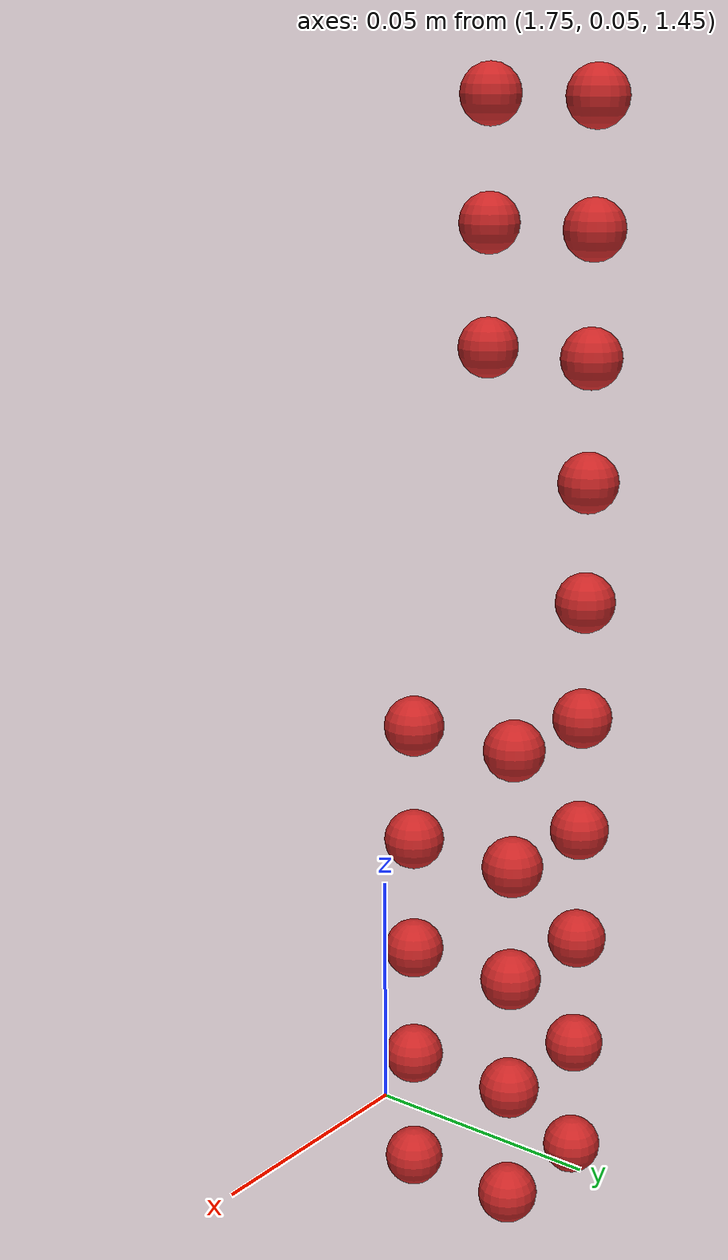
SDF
<sdf version="1.4">
 <world name="default">
  <model name="ground_plane">
   <static>1</static>
   <link name="link">
    <collision name="collision">
     <geometry><plane><normal>0 0 1</normal><size>100 100</size></plane></geometry>
     <surface><friction><ode><mu>100</mu><mu2>50</mu2></ode></friction></surface>
    </collision>
    <visual name="visual">
     <cast_shadows>0</cast_shadows>
     <geometry><plane><normal>0 0 1</normal><size>100 100</size></plane></geometry>
     <material>
      <script><uri>file://media/materials/scripts/gazebo.material</uri><name>Gazebo/Grey</name></script>
     </material>
    </visual>
    <velocity_decay><linear>0</linear><angular>0</angular></velocity_decay>
   </link>
  </model>
  <model name="sphere4">
   <pose>0.879343 0.032112 0.722288 0 0 0</pose>
   <link name="link">
    <pose>0.879343 0.032112 0.722288 0 0 0</pose>
    <inertial>
     <mass>0.001</mass>
     <inertia>
      <ixx>0.004</ixx>
      <ixy>0.000000</ixy>
      <ixz>0.000000</ixz>
      <iyy>0.004</iyy>
      <iyz>0.000000</iyz>
      <izz>0.004</izz>
     </inertia>
    </inertial>
    <collision name="collision">
     <surface>
      <contact><ode><kp>10000000000.000000</kp><kd>1</kd></ode></contact>
      <friction><ode><mu>0.01</mu><mu2>0.01</mu2></ode></friction>
     </surface>
     <geometry><sphere><radius>0.006</radius></sphere></geometry>
    </collision>
    <visual name="visual">
     <geometry><sphere><radius>0.006</radius></sphere></geometry>
     <material>
      <script><uri>file://media/materials/scripts/gazebo.material</uri><name>Gazebo/Red</name></script>
     </material>
    </visual>
   </link>
  </model>
  <model name="sphere6">
   <pose>0.867343 0.044112 0.722288 0 0 0</pose>
   <link name="link">
    <pose>0.867343 0.044112 0.722288 0 0 0</pose>
    <inertial>
     <mass>0.001</mass>
     <inertia>
      <ixx>0.004</ixx>
      <ixy>0.000000</ixy>
      <ixz>0.000000</ixz>
      <iyy>0.004</iyy>
      <iyz>0.000000</iyz>
      <izz>0.004</izz>
     </inertia>
    </inertial>
    <collision name="collision">
     <surface>
      <contact><ode><kp>10000000000.000000</kp><kd>1</kd></ode></contact>
      <friction><ode><mu>0.01</mu><mu2>0.01</mu2></ode></friction>
     </surface>
     <geometry><sphere><radius>0.006</radius></sphere></geometry>
    </collision>
    <visual name="visual">
     <geometry><sphere><radius>0.006</radius></sphere></geometry>
     <material>
      <script><uri>file://media/materials/scripts/gazebo.material</uri><name>Gazebo/Red</name></script>
     </material>
    </visual>
   </link>
  </model>
  <model name="sphere7">
   <pose>0.879343 0.044112 0.722288 0 0 0</pose>
   <link name="link">
    <pose>0.879343 0.044112 0.722288 0 0 0</pose>
    <inertial>
     <mass>0.001</mass>
     <inertia>
      <ixx>0.004</ixx>
      <ixy>0.000000</ixy>
      <ixz>0.000000</ixz>
      <iyy>0.004</iyy>
      <iyz>0.000000</iyz>
      <izz>0.004</izz>
     </inertia>
    </inertial>
    <collision name="collision">
     <surface>
      <contact><ode><kp>10000000000.000000</kp><kd>1</kd></ode></contact>
      <friction><ode><mu>0.01</mu><mu2>0.01</mu2></ode></friction>
     </surface>
     <geometry><sphere><radius>0.006</radius></sphere></geometry>
    </collision>
    <visual name="visual">
     <geometry><sphere><radius>0.006</radius></sphere></geometry>
     <material>
      <script><uri>file://media/materials/scripts/gazebo.material</uri><name>Gazebo/Red</name></script>
     </material>
    </visual>
   </link>
  </model>
  <model name="sphere13">
   <pose>0.879343 0.032112 0.734288 0 0 0</pose>
   <link name="link">
    <pose>0.879343 0.032112 0.734288 0 0 0</pose>
    <inertial>
     <mass>0.001</mass>
     <inertia>
      <ixx>0.004</ixx>
      <ixy>0.000000</ixy>
      <ixz>0.000000</ixz>
      <iyy>0.004</iyy>
      <iyz>0.000000</iyz>
      <izz>0.004</izz>
     </inertia>
    </inertial>
    <collision name="collision">
     <surface>
      <contact><ode><kp>10000000000.000000</kp><kd>1</kd></ode></contact>
      <friction><ode><mu>0.01</mu><mu2>0.01</mu2></ode></friction>
     </surface>
     <geometry><sphere><radius>0.006</radius></sphere></geometry>
    </collision>
    <visual name="visual">
     <geometry><sphere><radius>0.006</radius></sphere></geometry>
     <material>
      <script><uri>file://media/materials/scripts/gazebo.material</uri><name>Gazebo/Red</name></script>
     </material>
    </visual>
   </link>
  </model>
  <model name="sphere15">
   <pose>0.867343 0.044112 0.734288 0 0 0</pose>
   <link name="link">
    <pose>0.867343 0.044112 0.734288 0 0 0</pose>
    <inertial>
     <mass>0.001</mass>
     <inertia>
      <ixx>0.004</ixx>
      <ixy>0.000000</ixy>
      <ixz>0.000000</ixz>
      <iyy>0.004</iyy>
      <iyz>0.000000</iyz>
      <izz>0.004</izz>
     </inertia>
    </inertial>
    <collision name="collision">
     <surface>
      <contact><ode><kp>10000000000.000000</kp><kd>1</kd></ode></contact>
      <friction><ode><mu>0.01</mu><mu2>0.01</mu2></ode></friction>
     </surface>
     <geometry><sphere><radius>0.006</radius></sphere></geometry>
    </collision>
    <visual name="visual">
     <geometry><sphere><radius>0.006</radius></sphere></geometry>
     <material>
      <script><uri>file://media/materials/scripts/gazebo.material</uri><name>Gazebo/Red</name></script>
     </material>
    </visual>
   </link>
  </model>
  <model name="sphere16">
   <pose>0.879343 0.044112 0.734288 0 0 0</pose>
   <link name="link">
    <pose>0.879343 0.044112 0.734288 0 0 0</pose>
    <inertial>
     <mass>0.001</mass>
     <inertia>
      <ixx>0.004</ixx>
      <ixy>0.000000</ixy>
      <ixz>0.000000</ixz>
      <iyy>0.004</iyy>
      <iyz>0.000000</iyz>
      <izz>0.004</izz>
     </inertia>
    </inertial>
    <collision name="collision">
     <surface>
      <contact><ode><kp>10000000000.000000</kp><kd>1</kd></ode></contact>
      <friction><ode><mu>0.01</mu><mu2>0.01</mu2></ode></friction>
     </surface>
     <geometry><sphere><radius>0.006</radius></sphere></geometry>
    </collision>
    <visual name="visual">
     <geometry><sphere><radius>0.006</radius></sphere></geometry>
     <material>
      <script><uri>file://media/materials/scripts/gazebo.material</uri><name>Gazebo/Red</name></script>
     </material>
    </visual>
   </link>
  </model>
  <model name="sphere22">
   <pose>0.879343 0.032112 0.746288 0 0 0</pose>
   <link name="link">
    <pose>0.879343 0.032112 0.746288 0 0 0</pose>
    <inertial>
     <mass>0.001</mass>
     <inertia>
      <ixx>0.004</ixx>
      <ixy>0.000000</ixy>
      <ixz>0.000000</ixz>
      <iyy>0.004</iyy>
      <iyz>0.000000</iyz>
      <izz>0.004</izz>
     </inertia>
    </inertial>
    <collision name="collision">
     <surface>
      <contact><ode><kp>10000000000.000000</kp><kd>1</kd></ode></contact>
      <friction><ode><mu>0.01</mu><mu2>0.01</mu2></ode></friction>
     </surface>
     <geometry><sphere><radius>0.006</radius></sphere></geometry>
    </collision>
    <visual name="visual">
     <geometry><sphere><radius>0.006</radius></sphere></geometry>
     <material>
      <script><uri>file://media/materials/scripts/gazebo.material</uri><name>Gazebo/Red</name></script>
     </material>
    </visual>
   </link>
  </model>
  <model name="sphere24">
   <pose>0.867343 0.044112 0.746288 0 0 0</pose>
   <link name="link">
    <pose>0.867343 0.044112 0.746288 0 0 0</pose>
    <inertial>
     <mass>0.001</mass>
     <inertia>
      <ixx>0.004</ixx>
      <ixy>0.000000</ixy>
      <ixz>0.000000</ixz>
      <iyy>0.004</iyy>
      <iyz>0.000000</iyz>
      <izz>0.004</izz>
     </inertia>
    </inertial>
    <collision name="collision">
     <surface>
      <contact><ode><kp>10000000000.000000</kp><kd>1</kd></ode></contact>
      <friction><ode><mu>0.01</mu><mu2>0.01</mu2></ode></friction>
     </surface>
     <geometry><sphere><radius>0.006</radius></sphere></geometry>
    </collision>
    <visual name="visual">
     <geometry><sphere><radius>0.006</radius></sphere></geometry>
     <material>
      <script><uri>file://media/materials/scripts/gazebo.material</uri><name>Gazebo/Red</name></script>
     </material>
    </visual>
   </link>
  </model>
  <model name="sphere25">
   <pose>0.879343 0.044112 0.746288 0 0 0</pose>
   <link name="link">
    <pose>0.879343 0.044112 0.746288 0 0 0</pose>
    <inertial>
     <mass>0.001</mass>
     <inertia>
      <ixx>0.004</ixx>
      <ixy>0.000000</ixy>
      <ixz>0.000000</ixz>
      <iyy>0.004</iyy>
      <iyz>0.000000</iyz>
      <izz>0.004</izz>
     </inertia>
    </inertial>
    <collision name="collision">
     <surface>
      <contact><ode><kp>10000000000.000000</kp><kd>1</kd></ode></contact>
      <friction><ode><mu>0.01</mu><mu2>0.01</mu2></ode></friction>
     </surface>
     <geometry><sphere><radius>0.006</radius></sphere></geometry>
    </collision>
    <visual name="visual">
     <geometry><sphere><radius>0.006</radius></sphere></geometry>
     <material>
      <script><uri>file://media/materials/scripts/gazebo.material</uri><name>Gazebo/Red</name></script>
     </material>
    </visual>
   </link>
  </model>
  <model name="sphere31">
   <pose>0.879343 0.032112 0.758288 0 0 0</pose>
   <link name="link">
    <pose>0.879343 0.032112 0.758288 0 0 0</pose>
    <inertial>
     <mass>0.001</mass>
     <inertia>
      <ixx>0.004</ixx>
      <ixy>0.000000</ixy>
      <ixz>0.000000</ixz>
      <iyy>0.004</iyy>
      <iyz>0.000000</iyz>
      <izz>0.004</izz>
     </inertia>
    </inertial>
    <collision name="collision">
     <surface>
      <contact><ode><kp>10000000000.000000</kp><kd>1</kd></ode></contact>
      <friction><ode><mu>0.01</mu><mu2>0.01</mu2></ode></friction>
     </surface>
     <geometry><sphere><radius>0.006</radius></sphere></geometry>
    </collision>
    <visual name="visual">
     <geometry><sphere><radius>0.006</radius></sphere></geometry>
     <material>
      <script><uri>file://media/materials/scripts/gazebo.material</uri><name>Gazebo/Red</name></script>
     </material>
    </visual>
   </link>
  </model>
  <model name="sphere33">
   <pose>0.867343 0.044112 0.758288 0 0 0</pose>
   <link name="link">
    <pose>0.867343 0.044112 0.758288 0 0 0</pose>
    <inertial>
     <mass>0.001</mass>
     <inertia>
      <ixx>0.004</ixx>
      <ixy>0.000000</ixy>
      <ixz>0.000000</ixz>
      <iyy>0.004</iyy>
      <iyz>0.000000</iyz>
      <izz>0.004</izz>
     </inertia>
    </inertial>
    <collision name="collision">
     <surface>
      <contact><ode><kp>10000000000.000000</kp><kd>1</kd></ode></contact>
      <friction><ode><mu>0.01</mu><mu2>0.01</mu2></ode></friction>
     </surface>
     <geometry><sphere><radius>0.006</radius></sphere></geometry>
    </collision>
    <visual name="visual">
     <geometry><sphere><radius>0.006</radius></sphere></geometry>
     <material>
      <script><uri>file://media/materials/scripts/gazebo.material</uri><name>Gazebo/Red</name></script>
     </material>
    </visual>
   </link>
  </model>
  <model name="sphere34">
   <pose>0.879343 0.044112 0.758288 0 0 0</pose>
   <link name="link">
    <pose>0.879343 0.044112 0.758288 0 0 0</pose>
    <inertial>
     <mass>0.001</mass>
     <inertia>
      <ixx>0.004</ixx>
      <ixy>0.000000</ixy>
      <ixz>0.000000</ixz>
      <iyy>0.004</iyy>
      <iyz>0.000000</iyz>
      <izz>0.004</izz>
     </inertia>
    </inertial>
    <collision name="collision">
     <surface>
      <contact><ode><kp>10000000000.000000</kp><kd>1</kd></ode></contact>
      <friction><ode><mu>0.01</mu><mu2>0.01</mu2></ode></friction>
     </surface>
     <geometry><sphere><radius>0.006</radius></sphere></geometry>
    </collision>
    <visual name="visual">
     <geometry><sphere><radius>0.006</radius></sphere></geometry>
     <material>
      <script><uri>file://media/materials/scripts/gazebo.material</uri><name>Gazebo/Red</name></script>
     </material>
    </visual>
   </link>
  </model>
  <model name="sphere40">
   <pose>0.879343 0.032112 0.770288 0 0 0</pose>
   <link name="link">
    <pose>0.879343 0.032112 0.770288 0 0 0</pose>
    <inertial>
     <mass>0.001</mass>
     <inertia>
      <ixx>0.004</ixx>
      <ixy>0.000000</ixy>
      <ixz>0.000000</ixz>
      <iyy>0.004</iyy>
      <iyz>0.000000</iyz>
      <izz>0.004</izz>
     </inertia>
    </inertial>
    <collision name="collision">
     <surface>
      <contact><ode><kp>10000000000.000000</kp><kd>1</kd></ode></contact>
      <friction><ode><mu>0.01</mu><mu2>0.01</mu2></ode></friction>
     </surface>
     <geometry><sphere><radius>0.006</radius></sphere></geometry>
    </collision>
    <visual name="visual">
     <geometry><sphere><radius>0.006</radius></sphere></geometry>
     <material>
      <script><uri>file://media/materials/scripts/gazebo.material</uri><name>Gazebo/Red</name></script>
     </material>
    </visual>
   </link>
  </model>
  <model name="sphere42">
   <pose>0.867343 0.044112 0.770288 0 0 0</pose>
   <link name="link">
    <pose>0.867343 0.044112 0.770288 0 0 0</pose>
    <inertial>
     <mass>0.001</mass>
     <inertia>
      <ixx>0.004</ixx>
      <ixy>0.000000</ixy>
      <ixz>0.000000</ixz>
      <iyy>0.004</iyy>
      <iyz>0.000000</iyz>
      <izz>0.004</izz>
     </inertia>
    </inertial>
    <collision name="collision">
     <surface>
      <contact><ode><kp>10000000000.000000</kp><kd>1</kd></ode></contact>
      <friction><ode><mu>0.01</mu><mu2>0.01</mu2></ode></friction>
     </surface>
     <geometry><sphere><radius>0.006</radius></sphere></geometry>
    </collision>
    <visual name="visual">
     <geometry><sphere><radius>0.006</radius></sphere></geometry>
     <material>
      <script><uri>file://media/materials/scripts/gazebo.material</uri><name>Gazebo/Red</name></script>
     </material>
    </visual>
   </link>
  </model>
  <model name="sphere43">
   <pose>0.879343 0.044112 0.770288 0 0 0</pose>
   <link name="link">
    <pose>0.879343 0.044112 0.770288 0 0 0</pose>
    <inertial>
     <mass>0.001</mass>
     <inertia>
      <ixx>0.004</ixx>
      <ixy>0.000000</ixy>
      <ixz>0.000000</ixz>
      <iyy>0.004</iyy>
      <iyz>0.000000</iyz>
      <izz>0.004</izz>
     </inertia>
    </inertial>
    <collision name="collision">
     <surface>
      <contact><ode><kp>10000000000.000000</kp><kd>1</kd></ode></contact>
      <friction><ode><mu>0.01</mu><mu2>0.01</mu2></ode></friction>
     </surface>
     <geometry><sphere><radius>0.006</radius></sphere></geometry>
    </collision>
    <visual name="visual">
     <geometry><sphere><radius>0.006</radius></sphere></geometry>
     <material>
      <script><uri>file://media/materials/scripts/gazebo.material</uri><name>Gazebo/Red</name></script>
     </material>
    </visual>
   </link>
  </model>
  <model name="sphere51">
   <pose>0.867343 0.044112 0.782288 0 0 0</pose>
   <link name="link">
    <pose>0.867343 0.044112 0.782288 0 0 0</pose>
    <inertial>
     <mass>0.001</mass>
     <inertia>
      <ixx>0.004</ixx>
      <ixy>0.000000</ixy>
      <ixz>0.000000</ixz>
      <iyy>0.004</iyy>
      <iyz>0.000000</iyz>
      <izz>0.004</izz>
     </inertia>
    </inertial>
    <collision name="collision">
     <surface>
      <contact><ode><kp>10000000000.000000</kp><kd>1</kd></ode></contact>
      <friction><ode><mu>0.01</mu><mu2>0.01</mu2></ode></friction>
     </surface>
     <geometry><sphere><radius>0.006</radius></sphere></geometry>
    </collision>
    <visual name="visual">
     <geometry><sphere><radius>0.006</radius></sphere></geometry>
     <material>
      <script><uri>file://media/materials/scripts/gazebo.material</uri><name>Gazebo/Red</name></script>
     </material>
    </visual>
   </link>
  </model>
  <model name="sphere60">
   <pose>0.867343 0.044112 0.794288 0 0 0</pose>
   <link name="link">
    <pose>0.867343 0.044112 0.794288 0 0 0</pose>
    <inertial>
     <mass>0.001</mass>
     <inertia>
      <ixx>0.004</ixx>
      <ixy>0.000000</ixy>
      <ixz>0.000000</ixz>
      <iyy>0.004</iyy>
      <iyz>0.000000</iyz>
      <izz>0.004</izz>
     </inertia>
    </inertial>
    <collision name="collision">
     <surface>
      <contact><ode><kp>10000000000.000000</kp><kd>1</kd></ode></contact>
      <friction><ode><mu>0.01</mu><mu2>0.01</mu2></ode></friction>
     </surface>
     <geometry><sphere><radius>0.006</radius></sphere></geometry>
    </collision>
    <visual name="visual">
     <geometry><sphere><radius>0.006</radius></sphere></geometry>
     <material>
      <script><uri>file://media/materials/scripts/gazebo.material</uri><name>Gazebo/Red</name></script>
     </material>
    </visual>
   </link>
  </model>
  <model name="sphere66">
   <pose>0.867343 0.032112 0.806288 0 0 0</pose>
   <link name="link">
    <pose>0.867343 0.032112 0.806288 0 0 0</pose>
    <inertial>
     <mass>0.001</mass>
     <inertia>
      <ixx>0.004</ixx>
      <ixy>0.000000</ixy>
      <ixz>0.000000</ixz>
      <iyy>0.004</iyy>
      <iyz>0.000000</iyz>
      <izz>0.004</izz>
     </inertia>
    </inertial>
    <collision name="collision">
     <surface>
      <contact><ode><kp>10000000000.000000</kp><kd>1</kd></ode></contact>
      <friction><ode><mu>0.01</mu><mu2>0.01</mu2></ode></friction>
     </surface>
     <geometry><sphere><radius>0.006</radius></sphere></geometry>
    </collision>
    <visual name="visual">
     <geometry><sphere><radius>0.006</radius></sphere></geometry>
     <material>
      <script><uri>file://media/materials/scripts/gazebo.material</uri><name>Gazebo/Red</name></script>
     </material>
    </visual>
   </link>
  </model>
  <model name="sphere69">
   <pose>0.867343 0.044112 0.806288 0 0 0</pose>
   <link name="link">
    <pose>0.867343 0.044112 0.806288 0 0 0</pose>
    <inertial>
     <mass>0.001</mass>
     <inertia>
      <ixx>0.004</ixx>
      <ixy>0.000000</ixy>
      <ixz>0.000000</ixz>
      <iyy>0.004</iyy>
      <iyz>0.000000</iyz>
      <izz>0.004</izz>
     </inertia>
    </inertial>
    <collision name="collision">
     <surface>
      <contact><ode><kp>10000000000.000000</kp><kd>1</kd></ode></contact>
      <friction><ode><mu>0.01</mu><mu2>0.01</mu2></ode></friction>
     </surface>
     <geometry><sphere><radius>0.006</radius></sphere></geometry>
    </collision>
    <visual name="visual">
     <geometry><sphere><radius>0.006</radius></sphere></geometry>
     <material>
      <script><uri>file://media/materials/scripts/gazebo.material</uri><name>Gazebo/Red</name></script>
     </material>
    </visual>
   </link>
  </model>
  <model name="sphere75">
   <pose>0.867343 0.032112 0.818288 0 0 0</pose>
   <link name="link">
    <pose>0.867343 0.032112 0.818288 0 0 0</pose>
    <inertial>
     <mass>0.001</mass>
     <inertia>
      <ixx>0.004</ixx>
      <ixy>0.000000</ixy>
      <ixz>0.000000</ixz>
      <iyy>0.004</iyy>
      <iyz>0.000000</iyz>
      <izz>0.004</izz>
     </inertia>
    </inertial>
    <collision name="collision">
     <surface>
      <contact><ode><kp>10000000000.000000</kp><kd>1</kd></ode></contact>
      <friction><ode><mu>0.01</mu><mu2>0.01</mu2></ode></friction>
     </surface>
     <geometry><sphere><radius>0.006</radius></sphere></geometry>
    </collision>
    <visual name="visual">
     <geometry><sphere><radius>0.006</radius></sphere></geometry>
     <material>
      <script><uri>file://media/materials/scripts/gazebo.material</uri><name>Gazebo/Red</name></script>
     </material>
    </visual>
   </link>
  </model>
  <model name="sphere78">
   <pose>0.867343 0.044112 0.818288 0 0 0</pose>
   <link name="link">
    <pose>0.867343 0.044112 0.818288 0 0 0</pose>
    <inertial>
     <mass>0.001</mass>
     <inertia>
      <ixx>0.004</ixx>
      <ixy>0.000000</ixy>
      <ixz>0.000000</ixz>
      <iyy>0.004</iyy>
      <iyz>0.000000</iyz>
      <izz>0.004</izz>
     </inertia>
    </inertial>
    <collision name="collision">
     <surface>
      <contact><ode><kp>10000000000.000000</kp><kd>1</kd></ode></contact>
      <friction><ode><mu>0.01</mu><mu2>0.01</mu2></ode></friction>
     </surface>
     <geometry><sphere><radius>0.006</radius></sphere></geometry>
    </collision>
    <visual name="visual">
     <geometry><sphere><radius>0.006</radius></sphere></geometry>
     <material>
      <script><uri>file://media/materials/scripts/gazebo.material</uri><name>Gazebo/Red</name></script>
     </material>
    </visual>
   </link>
  </model>
  <model name="sphere84">
   <pose>0.867343 0.032112 0.830288 0 0 0</pose>
   <link name="link">
    <pose>0.867343 0.032112 0.830288 0 0 0</pose>
    <inertial>
     <mass>0.001</mass>
     <inertia>
      <ixx>0.004</ixx>
      <ixy>0.000000</ixy>
      <ixz>0.000000</ixz>
      <iyy>0.004</iyy>
      <iyz>0.000000</iyz>
      <izz>0.004</izz>
     </inertia>
    </inertial>
    <collision name="collision">
     <surface>
      <contact><ode><kp>10000000000.000000</kp><kd>1</kd></ode></contact>
      <friction><ode><mu>0.01</mu><mu2>0.01</mu2></ode></friction>
     </surface>
     <geometry><sphere><radius>0.006</radius></sphere></geometry>
    </collision>
    <visual name="visual">
     <geometry><sphere><radius>0.006</radius></sphere></geometry>
     <material>
      <script><uri>file://media/materials/scripts/gazebo.material</uri><name>Gazebo/Red</name></script>
     </material>
    </visual>
   </link>
  </model>
  <model name="sphere87">
   <pose>0.867343 0.044112 0.830288 0 0 0</pose>
   <link name="link">
    <pose>0.867343 0.044112 0.830288 0 0 0</pose>
    <inertial>
     <mass>0.001</mass>
     <inertia>
      <ixx>0.004</ixx>
      <ixy>0.000000</ixy>
      <ixz>0.000000</ixz>
      <iyy>0.004</iyy>
      <iyz>0.000000</iyz>
      <izz>0.004</izz>
     </inertia>
    </inertial>
    <collision name="collision">
     <surface>
      <contact><ode><kp>10000000000.000000</kp><kd>1</kd></ode></contact>
      <friction><ode><mu>0.01</mu><mu2>0.01</mu2></ode></friction>
     </surface>
     <geometry><sphere><radius>0.006</radius></sphere></geometry>
    </collision>
    <visual name="visual">
     <geometry><sphere><radius>0.006</radius></sphere></geometry>
     <material>
      <script><uri>file://media/materials/scripts/gazebo.material</uri><name>Gazebo/Red</name></script>
     </material>
    </visual>
   </link>
  </model>
 </world>
</sdf>
